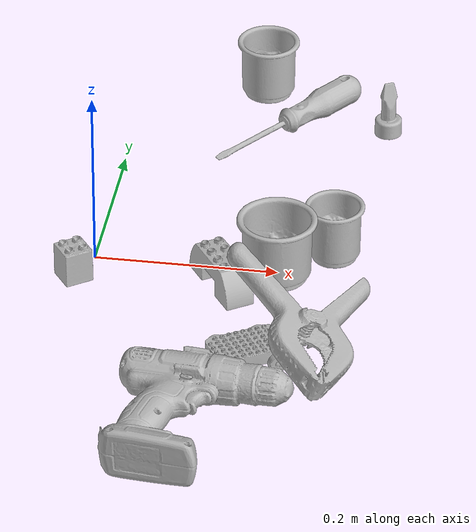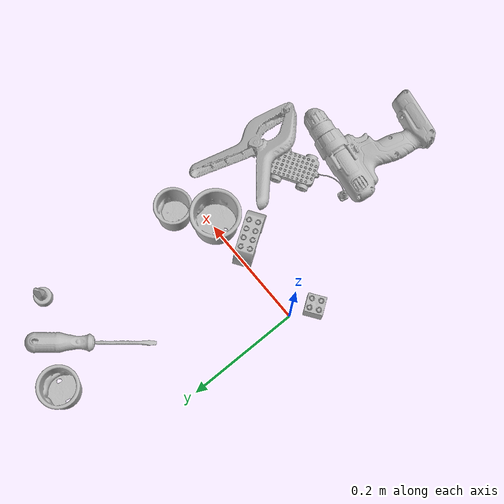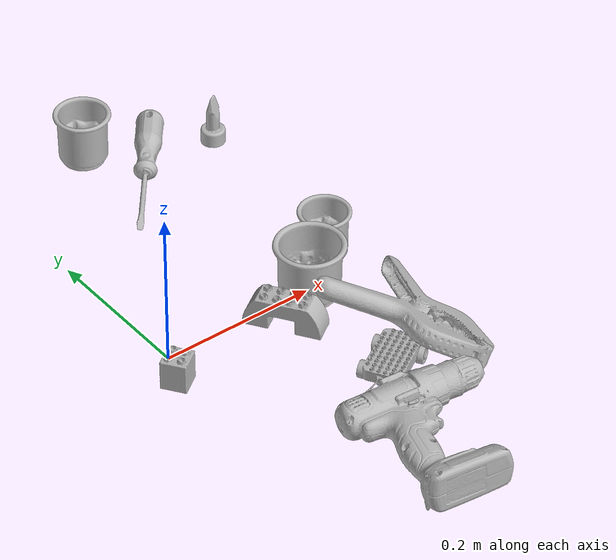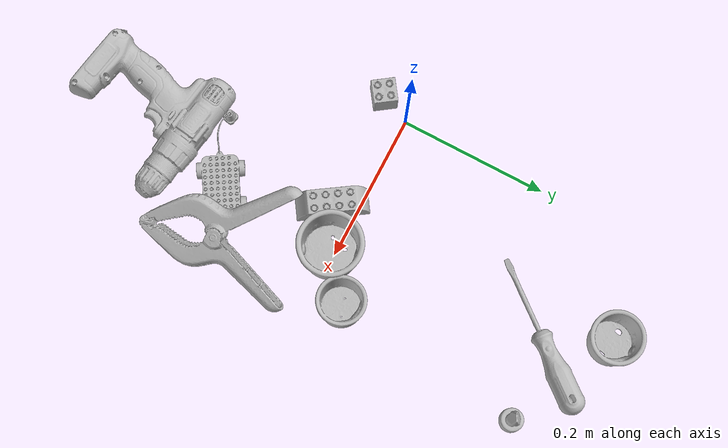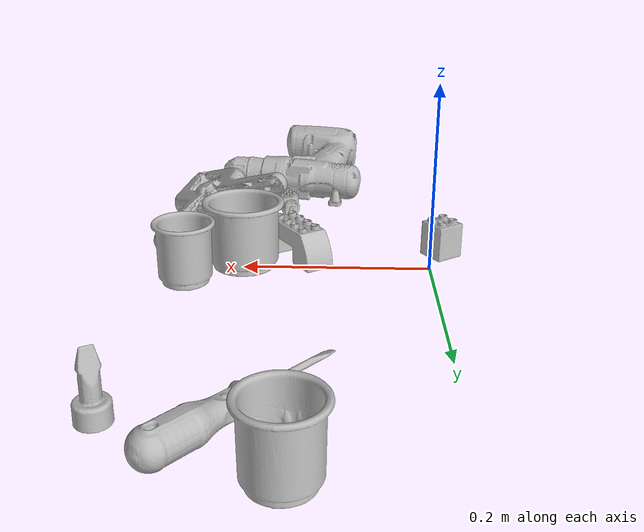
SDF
<sdf version="1.4">
  <world name="default">
    <light name="light1" type="point">
      <pose>0 0 1 0 0 0</pose>
      <diffuse>3 3 3 1</diffuse>
      <specular>3 3 3 1</specular>
    </light>
    <light name="light2" type="point">
      <pose>0 0.5 2 0 0 0</pose>
      <diffuse>1 1 1 1</diffuse>
      <specular>1 1 1 1</specular>
    </light>
    <light name="light3" type="point">
      <pose>0 0.5 2 0 0 0</pose>
      <diffuse>3 3 3 1</diffuse>
      <specular>3 3 3 1</specular>
    </light>
    <scene>
      <ambient>0.7 0.7 0.7</ambient>
    </scene>
    <model name="cup1">
      <link name="link_cup1">
        <collision name="default">
          <geometry>
            <mesh>
              <uri>model://d_cups/collision_meshes/collision.obj</uri>
              <scale>1.0 1.0 1.0</scale>
            </mesh>
          </geometry>
          <surface>
            <friction>
              <ode>
                <mu>0.5</mu>
                <mu2>0.5</mu2>
              </ode>
            </friction>
          <contact>
        <ode>
            <max_vel>0</max_vel>
            <min_depth>0.0001</min_depth>
            <kp>1e8</kp>
        </ode>
    </contact></surface>
        </collision>
        <visual name="default">
          <geometry>
            <mesh>
              <uri>model://d_cups/visual_meshes/visual.dae</uri>
              <scale>1.0 1.0 1.0</scale>
            </mesh>
          </geometry>
        </visual>
        <inertial>
          <mass>0.04943045228719711</mass>
          <pose>0.0008068052702583373 0.0019117395859211683 -0.0022666507866233587 0.2401104468273406 -0.24710716259907536 0.594298245500967</pose>
          <inertia>
            <ixx>4.1384912e-05</ixx>
            <iyy>4.1265153e-05</iyy>
            <izz>3.7460377e-05</izz>
            <ixy>0</ixy>
            <ixz>0</ixz>
            <iyz>0</iyz>
          </inertia>
        </inertial>
      </link>
      <pose>0.13814043998718262 0.3645487129688263 0.034659020602703094 1.1109770180039538e-06 -5.4052478056479244e-08 -0.7888729967141794</pose>
    </model>
    <model name="cup2">
      <link name="link_cup2">
        <collision name="default">
          <geometry>
            <mesh>
              <uri>model://c_cups/collision_meshes/collision.obj</uri>
              <scale>1.0 1.0 1.0</scale>
            </mesh>
          </geometry>
          <surface>
            <friction>
              <ode>
                <mu>0.5</mu>
                <mu2>0.5</mu2>
              </ode>
            </friction>
          <contact>
        <ode>
            <max_vel>0</max_vel>
            <min_depth>0.0001</min_depth>
            <kp>1e8</kp>
        </ode>
    </contact></surface>
        </collision>
        <visual name="default">
          <geometry>
            <mesh>
              <uri>model://c_cups/visual_meshes/visual.dae</uri>
              <scale>1.0 1.0 1.0</scale>
            </mesh>
          </geometry>
        </visual>
        <inertial>
          <mass>0.02161477506160736</mass>
          <pose>0.0007237254758365452 0.002015391131862998 -0.0012750980677083135 0.3021577101392444 0.013461522825774588 -0.08771822086046323</pose>
          <inertia>
            <ixx>1.607462e-05</ixx>
            <iyy>1.5790554e-05</iyy>
            <izz>1.4215883e-05</izz>
            <ixy>0</ixy>
            <ixz>0</ixz>
            <iyz>0</iyz>
          </inertia>
        </inertial>
      </link>
      <pose>0.25632989406585693 0.03958820551633835 0.033458955585956573 1.4048452358740025e-05 1.2122857187164403e-05 -0.28209301531212866</pose>
    </model>
    <model name="cup3">
      <link name="link_cup3">
        <collision name="default">
          <geometry>
            <mesh>
              <uri>model://g_cups/collision_meshes/collision.obj</uri>
              <scale>1.0 1.0 1.0</scale>
            </mesh>
          </geometry>
          <surface>
            <friction>
              <ode>
                <mu>0.5</mu>
                <mu2>0.5</mu2>
              </ode>
            </friction>
          <contact>
        <ode>
            <max_vel>0</max_vel>
            <min_depth>0.0001</min_depth>
            <kp>1e8</kp>
        </ode>
    </contact></surface>
        </collision>
        <visual name="default">
          <geometry>
            <mesh>
              <uri>model://g_cups/visual_meshes/visual.dae</uri>
              <scale>1.0 1.0 1.0</scale>
            </mesh>
          </geometry>
        </visual>
        <inertial>
          <mass>0.04413851350545883</mass>
          <pose>-0.0007946275873109698 -4.206433004583232e-05 -0.002132937777787447 -0.2138199678327952 -0.31410615416341514 0.3111935262320568</pose>
          <inertia>
            <ixx>5.151955e-05</ixx>
            <iyy>5.1344283e-05</iyy>
            <izz>5.3365377e-05</izz>
            <ixy>0</ixy>
            <ixz>0</ixz>
            <iyz>0</iyz>
          </inertia>
        </inertial>
      </link>
      <pose>0.19984261691570282 -0.00569955725222826 0.03720302879810333 -1.6231200821599627e-07 -1.1769476998934622e-06 -1.9794734377826917</pose>
    </model>
    <model name="toy1">
      <link name="link_toy1">
        <collision name="default">
          <geometry>
            <mesh>
              <uri>model://e_lego_duplo/collision_meshes/collision.obj</uri>
              <scale>1.0 1.0 1.0</scale>
            </mesh>
          </geometry>
          <surface>
            <friction>
              <ode>
                <mu>0.5</mu>
                <mu2>0.5</mu2>
              </ode>
            </friction>
          <contact>
        <ode>
            <max_vel>0</max_vel>
            <min_depth>0.0001</min_depth>
            <kp>1e8</kp>
        </ode>
    </contact></surface>
        </collision>
        <visual name="default">
          <geometry>
            <mesh>
              <uri>model://e_lego_duplo/visual_meshes/visual.dae</uri>
              <scale>1.0 1.0 1.0</scale>
            </mesh>
          </geometry>
        </visual>
        <inertial>
          <mass>0.08806774020195007</mass>
          <pose>0.0003256051568314433 0.00023485405836254358 0.0019521453650668263 -0.02256777049150226 -6.824370740412915e-05 -0.00762515400873393</pose>
          <inertia>
            <ixx>1.8365032e-05</ixx>
            <iyy>7.537481e-05</iyy>
            <izz>7.3399904e-05</izz>
            <ixy>0</ixy>
            <ixz>0</ixz>
            <iyz>0</iyz>
          </inertia>
        </inertial>
      </link>
      <pose>0.14366403222084045 -0.03282999247312546 0.02178250066936016 0.0018224721089268809 -4.563501294424285e-05 -0.9805176717387313</pose>
    </model>
    <model name="toy2">
      <link name="link_toy2">
        <collision name="default">
          <geometry>
            <mesh>
              <uri>model://b_lego_duplo/collision_meshes/collision.obj</uri>
              <scale>1.0 1.0 1.0</scale>
            </mesh>
          </geometry>
          <surface>
            <friction>
              <ode>
                <mu>0.5</mu>
                <mu2>0.5</mu2>
              </ode>
            </friction>
          <contact>
        <ode>
            <max_vel>0</max_vel>
            <min_depth>0.0001</min_depth>
            <kp>1e8</kp>
        </ode>
    </contact></surface>
        </collision>
        <visual name="default">
          <geometry>
            <mesh>
              <uri>model://b_lego_duplo/visual_meshes/visual.dae</uri>
              <scale>1.0 1.0 1.0</scale>
            </mesh>
          </geometry>
        </visual>
        <inertial>
          <mass>0.04734363779425621</mass>
          <pose>-0.00011053025809815153 -9.15254986466607e-06 0.0019294298253953457 -0.03749543151759021 -0.02635344242756168 0.4519151706388912</pose>
          <inertia>
            <ixx>9.689229e-06</ixx>
            <iyy>9.754364e-06</iyy>
            <izz>8.632791e-06</izz>
            <ixy>0</ixy>
            <ixz>0</ixz>
            <iyz>0</iyz>
          </inertia>
        </inertial>
      </link>
      <pose>-0.01597282662987709 -0.04043547436594963 0.021814996376633644 -1.6979756807396672e-07 4.568230246466636e-07 0.6138708339294395</pose>
    </model>
    <model name="toy3">
      <link name="link_toy3">
        <collision name="default">
          <geometry>
            <mesh>
              <uri>model://g_lego_duplo/collision_meshes/collision.obj</uri>
              <scale>0.5 0.5 0.5</scale>
            </mesh>
          </geometry>
          <surface>
            <friction>
              <ode>
                <mu>0.5</mu>
                <mu2>0.5</mu2>
              </ode>
            </friction>
          <contact>
        <ode>
            <max_vel>0</max_vel>
            <min_depth>0.0001</min_depth>
            <kp>1e8</kp>
        </ode>
    </contact></surface>
        </collision>
        <visual name="default">
          <geometry>
            <mesh>
              <uri>model://g_lego_duplo/visual_meshes/visual.dae</uri>
              <scale>0.5 0.5 0.5</scale>
            </mesh>
          </geometry>
        </visual>
        <inertial>
          <mass>0.0549229197204113</mass>
          <pose>-0.02502383477985859 0.0008777315961197019 0.0019403378246352077 0.010963030367844774 0.03810824354215502 -0.09653013034360637</pose>
          <inertia>
            <ixx>1.989599e-05</ixx>
            <iyy>6.0152015e-05</iyy>
            <izz>7.525238e-05</izz>
            <ixy>0</ixy>
            <ixz>0</ixz>
            <iyz>0</iyz>
          </inertia>
        </inertial>
      </link>
      <pose>0.16446495056152344 -0.1839984506368637 0.015031090937554836 -8.204791227868434e-05 -0.0043091586567260195 -2.599040304184309</pose>
    </model>
    <model name="toy4">
      <link name="link_toy4">
        <collision name="default">
          <geometry>
            <mesh>
              <uri>model://e_toy_airplane/collision_meshes/collision.obj</uri>
              <scale>1.0 1.0 1.0</scale>
            </mesh>
          </geometry>
          <surface>
            <friction>
              <ode>
                <mu>0.5</mu>
                <mu2>0.5</mu2>
              </ode>
            </friction>
          <contact>
        <ode>
            <max_vel>0</max_vel>
            <min_depth>0.0001</min_depth>
            <kp>1e8</kp>
        </ode>
    </contact></surface>
        </collision>
        <visual name="default">
          <geometry>
            <mesh>
              <uri>model://e_toy_airplane/visual_meshes/visual.dae</uri>
              <scale>1.0 1.0 1.0</scale>
            </mesh>
          </geometry>
        </visual>
        <inertial>
          <mass>0.02949252724647522</mass>
          <pose>0.0001174047210952267 -2.248294731543865e-05 -0.011187205091118813 0.00551852159670192 0.009228270522190251 0.15041692690710914</pose>
          <inertia>
            <ixx>9.0014555e-06</ixx>
            <iyy>8.909378e-06</iyy>
            <izz>2.7052915e-06</izz>
            <ixy>0</ixy>
            <ixz>0</ixz>
            <iyz>0</iyz>
          </inertia>
        </inertial>
      </link>
      <pose>0.28453490138053894 0.2969643175601959 0.033212147653102875 4.447996716974543e-05 -0.00018075816518824217 1.9478970111652691</pose>
    </model>
    <model name="hardware1">
      <link name="link_hardware1">
        <collision name="default">
          <geometry>
            <mesh>
              <uri>model://power_drill/collision_meshes/collision.obj</uri>
              <scale>1.0 1.0 1.0</scale>
            </mesh>
          </geometry>
          <surface>
            <friction>
              <ode>
                <mu>0.5</mu>
                <mu2>0.5</mu2>
              </ode>
            </friction>
          <contact>
        <ode>
            <max_vel>0</max_vel>
            <min_depth>0.0001</min_depth>
            <kp>1e8</kp>
        </ode>
    </contact></surface>
        </collision>
        <visual name="default">
          <geometry>
            <mesh>
              <uri>model://power_drill/visual_meshes/visual.dae</uri>
              <scale>1.0 1.0 1.0</scale>
            </mesh>
          </geometry>
        </visual>
        <inertial>
          <mass>0.4622694253921509</mass>
          <pose>-0.014780544675886631 0.014369423501193523 0.0012414170196279883 0.0046091653592492164 0.00407302392026691 -0.1836269379856391</pose>
          <inertia>
            <ixx>0.0018837696</ixx>
            <iyy>0.00074116525</iyy>
            <izz>0.0024878501</izz>
            <ixy>0</ixy>
            <ixz>0</ixz>
            <iyz>0</iyz>
          </inertia>
        </inertial>
      </link>
      <pose>0.15002965927124023 -0.30813318490982056 0.027312355116009712 -0.03030300163892326 -0.04725290690724349 -0.1475159409433847</pose>
    </model>
    <model name="hardware2">
      <link name="link_hardware2">
        <collision name="default">
          <geometry>
            <mesh>
              <uri>model://flat_screwdriver/collision_meshes/collision.obj</uri>
              <scale>1.0 1.0 1.0</scale>
            </mesh>
          </geometry>
          <surface>
            <friction>
              <ode>
                <mu>0.5</mu>
                <mu2>0.5</mu2>
              </ode>
            </friction>
          <contact>
        <ode>
            <max_vel>0</max_vel>
            <min_depth>0.0001</min_depth>
            <kp>1e8</kp>
        </ode>
    </contact></surface>
        </collision>
        <visual name="default">
          <geometry>
            <mesh>
              <uri>model://flat_screwdriver/visual_meshes/visual.dae</uri>
              <scale>1.0 1.0 1.0</scale>
            </mesh>
          </geometry>
        </visual>
        <inertial>
          <mass>0.07028686255216599</mass>
          <pose>-0.0489187091588974 -0.0006576801533810794 -0.0006140916375443339 -0.5613212056153659 -0.0032337294395619258 0.006982277044942129</pose>
          <inertia>
            <ixx>8.3043415e-06</ixx>
            <iyy>0.00010542549</iyy>
            <izz>0.00010537667</izz>
            <ixy>0</ixy>
            <ixz>0</ixz>
            <iyz>0</iyz>
          </inertia>
        </inertial>
      </link>
      <pose>0.17332932353019714 0.2834875285625458 0.015338637866079807 -0.21441324646061316 0.040694655787702594 -2.2634213699969257</pose>
    </model>
    <model name="hardware3">
      <link name="link_hardware3">
        <collision name="default">
          <geometry>
            <mesh>
              <uri>model://extra_large_clamp/collision_meshes/collision.obj</uri>
              <scale>1.0 1.0 1.0</scale>
            </mesh>
          </geometry>
          <surface>
            <friction>
              <ode>
                <mu>0.5</mu>
                <mu2>0.5</mu2>
              </ode>
            </friction>
          <contact>
        <ode>
            <max_vel>0</max_vel>
            <min_depth>0.0001</min_depth>
            <kp>1e8</kp>
        </ode>
    </contact></surface>
        </collision>
        <visual name="default">
          <geometry>
            <mesh>
              <uri>model://extra_large_clamp/visual_meshes/visual.dae</uri>
              <scale>1.0 1.0 1.0</scale>
            </mesh>
          </geometry>
        </visual>
        <inertial>
          <mass>0.19051048159599304</mass>
          <pose>0.0032320222817361355 -7.615413051098585e-05 0.0003172157157678157 0.013786989477745152 -0.0005066809054022428 -0.0008935736893705532</pose>
          <inertia>
            <ixx>0.00028954487</ixx>
            <iyy>0.0004985067</iyy>
            <izz>0.0007616155</izz>
            <ixy>0</ixy>
            <ixz>0</ixz>
            <iyz>0</iyz>
          </inertia>
        </inertial>
      </link>
      <pose>0.2521912157535553 -0.14229625463485718 0.030835218727588654 -0.4212321190022641 0.11691238572100729 -1.3335667554067545</pose>
    </model>
  <physics type="ode">
      <max_contacts>50</max_contacts>
      <ode>
        <solver>
          <type>quick</type>
          <iters>75</iters>
        </solver>
        <constraints>
          <contact_max_correcting_vel>0</contact_max_correcting_vel>
          <contact_surface_layer>0</contact_surface_layer>
        </constraints>
      </ode>
    </physics></world>
</sdf>
